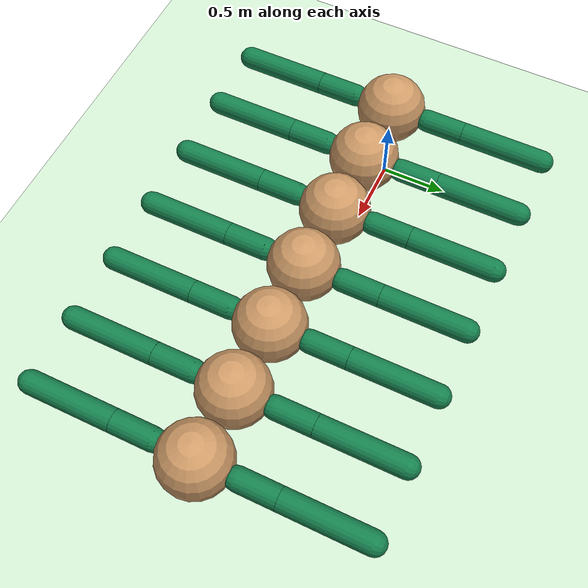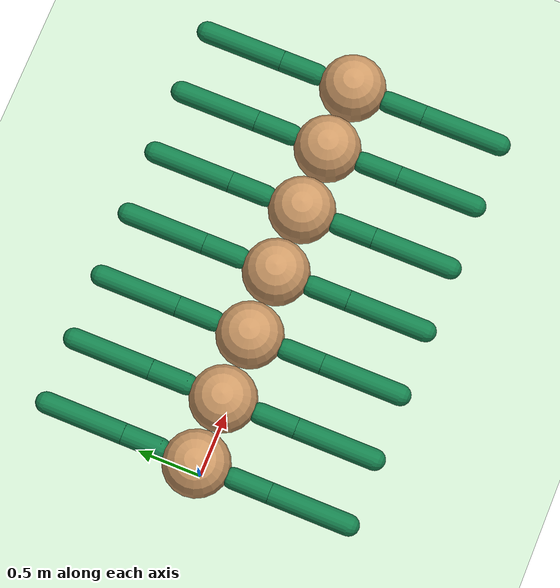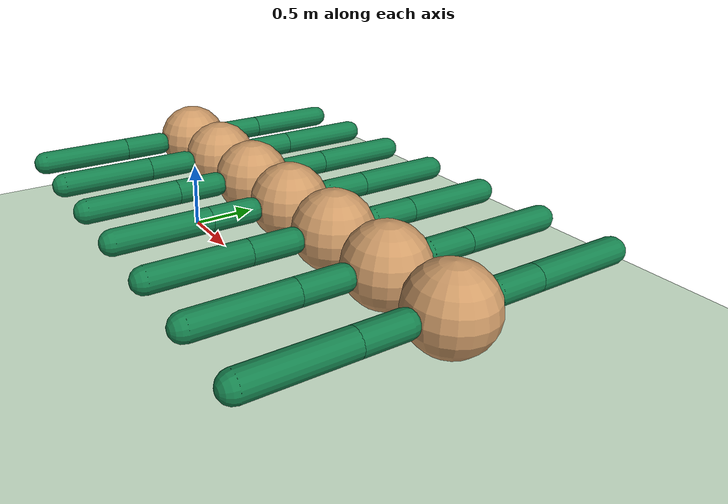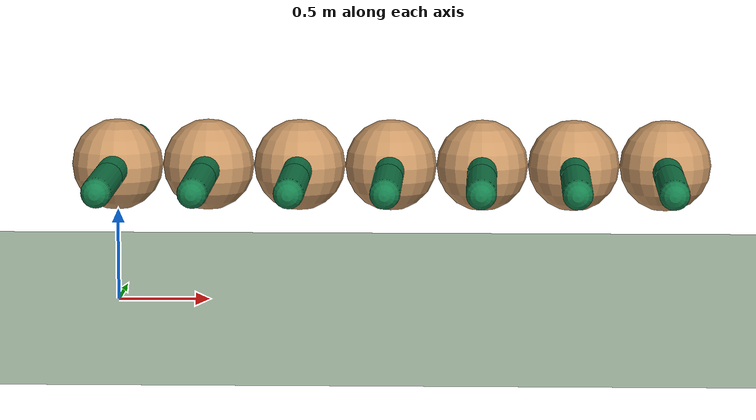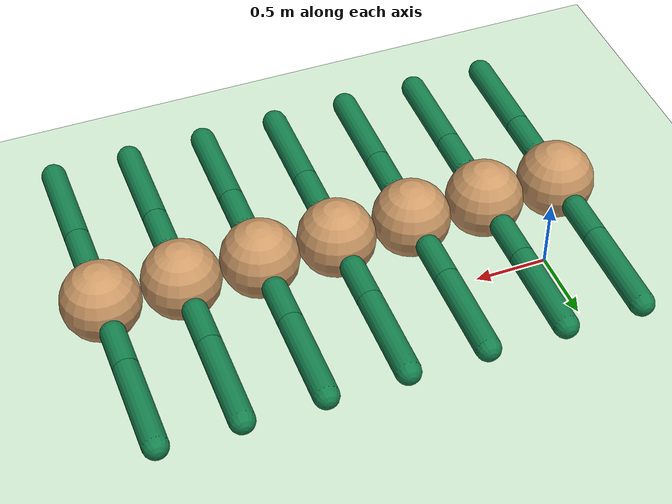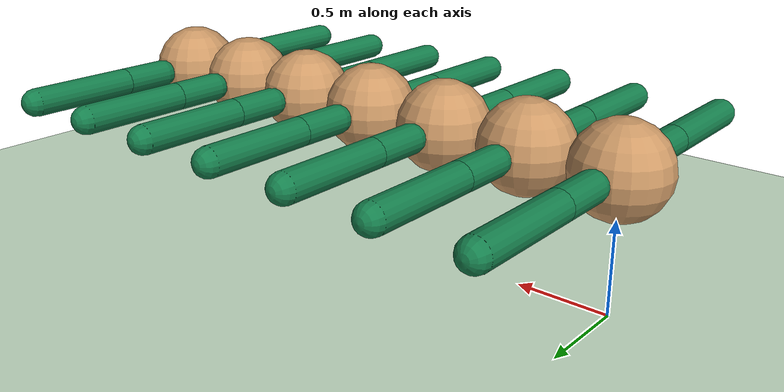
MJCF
<mujoco model="centipede">
    <compiler angle="degree" coordinate="local" inertiafromgeom="true"/>

    <option integrator="RK4" timestep="0.01"/>

    <default>
        <joint armature="1" damping="1" limited="true"/>
        <geom conaffinity="0" condim="3" density="25.0" friction="1.5 0.1 0.1" margin="0.01" rgba="0.8 0.6 0.4 1"/>
    </default>

    <asset>
        <texture builtin="gradient" height="100" rgb1="1 1 1" rgb2="0 0 0" type="skybox" width="100"/>
        <texture builtin="flat" height="1278" mark="cross" markrgb="1 1 1" name="texgeom" random="0.01"
                 rgb1="0.8 0.6 0.4" rgb2="0.8 0.6 0.4" type="cube" width="127"/>
        <texture builtin="checker" height="100" name="texplane" rgb1="0 0 0" rgb2="0.8 0.8 0.8" type="2d" width="100"/>
        <material name="MatPlane" reflectance="0.5" shininess="1" specular="1" texrepeat="60 60" texture="texplane"/>
        <material name="geom" texture="texgeom" texuniform="true"/>
    </asset>

    <worldbody>
        <light cutoff="100" diffuse="1 1 1" dir="-0 0 -1.3" directional="true" exponent="1" pos="0 0 1.3"
               specular=".1 .1 .1"/>
        <geom conaffinity="1" condim="3" material="MatPlane" name="floor" pos="0 0 0" rgba="0.8 0.9 0.8 1"
              size="40 40 40" type="plane"/>
        <body name="torso_0" pos="0 0 0.75">
            <geom name="torsoGeom_0" pos="0 0 0" size="0.25" type="sphere" density="100"/>
            <joint armature="0" damping="0" limited="false" margin="0.01" name="root" pos="0 0 0" type="free"/>

            <body name="legbody_0" pos="0.0 -0.28 0">
                <joint axis="0 0 1" name="lefthip_0" pos="0.0 0.0 0.0" range="-40 40" type="hinge"/>
                <geom fromto="0.0 0.0 0.0 0.0 -0.28 0.0" name="legGeom_0" size="0.08" type="capsule"
                      rgba=".08 .5 .3 1"/>
                <body pos="0 -0.28 0" name="frontFoot_0">
                    <joint axis="1 0 0" name="ankle_0" pos="0.0 0.0 0.0" range="30 100" type="hinge"/>
                    <geom fromto="0.0 0.0 0.0 0 -0.6 0.0" name="ankleGeom_0" size="0.08" type="capsule"
                          rgba=".08 .5 .3 1"/>
                </body>
            </body>

            <body name="legbody_1" pos="0.0 0.28 0">
                <joint axis="0 0 1" name="righthip_1" pos="0.0 0.0 0.0" range="-40 40" type="hinge"/>
                <geom fromto="0.0 0.0 0.0 0.0 0.28 0.0" name="legGeom_1" size="0.08" type="capsule" rgba=".08 .5 .3 1"/>
                <body pos="0 0.28 0" name="frontFoot_1">
                    <joint axis="-1 0 0" name="ankle_1" pos="0.0 0.0 0.0" range="30 100" type="hinge"/>
                    <geom fromto="0.0 0.0 0.0 0 0.6 0.0" name="ankleGeom_1" size="0.08" type="capsule"
                          rgba=".08 .5 .3 1"/>
                </body>
            </body>

            <body name="torso_1" pos="0.50 0 0">
                <geom name="torsoGeom_1" pos="0 0 0" size="0.25" type="sphere" density="100"/>
                <joint axis="0 0 1" name="body_1" pos="-0.25 0.0 0.0" range="-20 20" type="hinge"/>
                <joint axis="0 1 0" name="bodyupdown_1" pos="-0.25 0.0 0.0" range="-10 30" type="hinge"/>

                <body name="legbody_2" pos="0.0 -0.28 0">
                    <joint axis="0 0 1" name="lefthip_2" pos="0.0 0.0 0.0" range="-40 40" type="hinge"/>
                    <geom fromto="0.0 0.0 0.0 0.0 -0.28 0.0" name="legGeom_2" size="0.08" type="capsule"
                          rgba=".08 .5 .3 1"/>
                    <body pos="0 -0.28 0" name="frontFoot_2">
                        <joint axis="1 0 0" name="ankle_2" pos="0.0 0.0 0.0" range="30 100" type="hinge"/>
                        <geom fromto="0.0 0.0 0.0 0 -0.6 0.0" name="ankleGeom_2" size="0.08" type="capsule"
                              rgba=".08 .5 .3 1"/>
                    </body>
                </body>

                <body name="legbody_3" pos="0.0 0.28 0">
                    <joint axis="0 0 1" name="righthip_3" pos="0.0 0.0 0.0" range="-40 40" type="hinge"/>
                    <geom fromto="0.0 0.0 0.0 0.0 0.28 0.0" name="legGeom_3" size="0.08" type="capsule"
                          rgba=".08 .5 .3 1"/>
                    <body pos="0 0.28 0" name="frontFoot_3">
                        <joint axis="-1 0 0" name="ankle_3" pos="0.0 0.0 0.0" range="30 100" type="hinge"/>
                        <geom fromto="0.0 0.0 0.0 0 0.6 0.0" name="ankleGeom_3" size="0.08" type="capsule"
                              rgba=".08 .5 .3 1"/>
                    </body>
                </body>

                <body name="torso_2" pos="0.50 0 0">
                    <geom name="torsoGeom_2" pos="0 0 0" size="0.25" type="sphere" density="100"/>
                    <joint axis="0 0 1" name="body_2" pos="-0.25 0.0 0.0" range="-20 20" type="hinge"/>
                    <joint axis="0 1 0" name="bodyupdown_2" pos="-0.25 0.0 0.0" range="-10 30" type="hinge"/>

                    <body name="legbody_4" pos="0.0 -0.28 0">
                        <joint axis="0 0 1" name="lefthip_4" pos="0.0 0.0 0.0" range="-40 40" type="hinge"/>
                        <geom fromto="0.0 0.0 0.0 0.0 -0.28 0.0" name="legGeom_4" size="0.08" type="capsule"
                              rgba=".08 .5 .3 1"/>
                        <body pos="0 -0.28 0" name="frontFoot_4">
                            <joint axis="1 0 0" name="ankle_4" pos="0.0 0.0 0.0" range="30 100" type="hinge"/>
                            <geom fromto="0.0 0.0 0.0 0 -0.6 0.0" name="ankleGeom_4" size="0.08" type="capsule"
                                  rgba=".08 .5 .3 1"/>
                        </body>
                    </body>

                    <body name="legbody_5" pos="0.0 0.28 0">
                        <joint axis="0 0 1" name="righthip_5" pos="0.0 0.0 0.0" range="-40 40" type="hinge"/>
                        <geom fromto="0.0 0.0 0.0 0.0 0.28 0.0" name="legGeom_5" size="0.08" type="capsule"
                              rgba=".08 .5 .3 1"/>
                        <body pos="0 0.28 0" name="frontFoot_5">
                            <joint axis="-1 0 0" name="ankle_5" pos="0.0 0.0 0.0" range="30 100" type="hinge"/>
                            <geom fromto="0.0 0.0 0.0 0 0.6 0.0" name="ankleGeom_5" size="0.08" type="capsule"
                                  rgba=".08 .5 .3 1"/>
                        </body>
                    </body>

                    <body name="torso_3" pos="0.50 0 0">
                        <geom name="torsoGeom_3" pos="0 0 0" size="0.25" type="sphere" density="100"/>
                        <joint axis="0 0 1" name="body_3" pos="-0.25 0.0 0.0" range="-20 20" type="hinge"/>
                        <joint axis="0 1 0" name="bodyupdown_3" pos="-0.25 0.0 0.0" range="-10 30" type="hinge"/>

                        <body name="legbody_6" pos="0.0 -0.28 0">
                            <joint axis="0 0 1" name="lefthip_6" pos="0.0 0.0 0.0" range="-40 40" type="hinge"/>
                            <geom fromto="0.0 0.0 0.0 0.0 -0.28 0.0" name="legGeom_6" size="0.08" type="capsule"
                                  rgba=".08 .5 .3 1"/>
                            <body pos="0 -0.28 0" name="frontFoot_6">
                                <joint axis="1 0 0" name="ankle_6" pos="0.0 0.0 0.0" range="30 100" type="hinge"/>
                                <geom fromto="0.0 0.0 0.0 0 -0.6 0.0" name="ankleGeom_6" size="0.08" type="capsule"
                                      rgba=".08 .5 .3 1"/>
                            </body>
                        </body>

                        <body name="legbody_7" pos="0.0 0.28 0">
                            <joint axis="0 0 1" name="righthip_7" pos="0.0 0.0 0.0" range="-40 40" type="hinge"/>
                            <geom fromto="0.0 0.0 0.0 0.0 0.28 0.0" name="legGeom_7" size="0.08" type="capsule"
                                  rgba=".08 .5 .3 1"/>
                            <body pos="0 0.28 0" name="frontFoot_7">
                                <joint axis="-1 0 0" name="ankle_7" pos="0.0 0.0 0.0" range="30 100" type="hinge"/>
                                <geom fromto="0.0 0.0 0.0 0 0.6 0.0" name="ankleGeom_7" size="0.08" type="capsule"
                                      rgba=".08 .5 .3 1"/>
                            </body>
                        </body>

                        <body name="torso_4" pos="0.50 0 0">
                            <geom name="torsoGeom_4" pos="0 0 0" size="0.25" type="sphere" density="100"/>
                            <joint axis="0 0 1" name="body_4" pos="-0.25 0.0 0.0" range="-20 20" type="hinge"/>
                            <joint axis="0 1 0" name="bodyupdown_4" pos="-0.25 0.0 0.0" range="-10 30" type="hinge"/>

                            <body name="legbody_8" pos="0.0 -0.28 0">
                                <joint axis="0 0 1" name="lefthip_8" pos="0.0 0.0 0.0" range="-40 40" type="hinge"/>
                                <geom fromto="0.0 0.0 0.0 0.0 -0.28 0.0" name="legGeom_8" size="0.08" type="capsule"
                                      rgba=".08 .5 .3 1"/>
                                <body pos="0 -0.28 0" name="frontFoot_8">
                                    <joint axis="1 0 0" name="ankle_8" pos="0.0 0.0 0.0" range="30 100" type="hinge"/>
                                    <geom fromto="0.0 0.0 0.0 0 -0.6 0.0" name="ankleGeom_8" size="0.08" type="capsule"
                                          rgba=".08 .5 .3 1"/>
                                </body>
                            </body>

                            <body name="legbody_9" pos="0.0 0.28 0">
                                <joint axis="0 0 1" name="righthip_9" pos="0.0 0.0 0.0" range="-40 40" type="hinge"/>
                                <geom fromto="0.0 0.0 0.0 0.0 0.28 0.0" name="legGeom_9" size="0.08" type="capsule"
                                      rgba=".08 .5 .3 1"/>
                                <body pos="0 0.28 0" name="frontFoot_9">
                                    <joint axis="-1 0 0" name="ankle_9" pos="0.0 0.0 0.0" range="30 100" type="hinge"/>
                                    <geom fromto="0.0 0.0 0.0 0 0.6 0.0" name="ankleGeom_9" size="0.08" type="capsule"
                                          rgba=".08 .5 .3 1"/>
                                </body>
                            </body>

                            <body name="torso_5" pos="0.50 0 0">
                                <geom name="torsoGeom_5" pos="0 0 0" size="0.25" type="sphere" density="100"/>
                                <joint axis="0 0 1" name="body_5" pos="-0.25 0.0 0.0" range="-20 20" type="hinge"/>
                                <joint axis="0 1 0" name="bodyupdown_5" pos="-0.25 0.0 0.0" range="-10 30"
                                       type="hinge"/>

                                <body name="legbody_10" pos="0.0 -0.28 0">
                                    <joint axis="0 0 1" name="lefthip_10" pos="0.0 0.0 0.0" range="-40 40"
                                           type="hinge"/>
                                    <geom fromto="0.0 0.0 0.0 0.0 -0.28 0.0" name="legGeom_10" size="0.08"
                                          type="capsule" rgba=".08 .5 .3 1"/>
                                    <body pos="0 -0.28 0" name="frontFoot_10">
                                        <joint axis="1 0 0" name="ankle_10" pos="0.0 0.0 0.0" range="30 100"
                                               type="hinge"/>
                                        <geom fromto="0.0 0.0 0.0 0 -0.6 0.0" name="ankleGeom_10" size="0.08"
                                              type="capsule" rgba=".08 .5 .3 1"/>
                                    </body>
                                </body>

                                <body name="legbody_11" pos="0.0 0.28 0">
                                    <joint axis="0 0 1" name="righthip_11" pos="0.0 0.0 0.0" range="-40 40"
                                           type="hinge"/>
                                    <geom fromto="0.0 0.0 0.0 0.0 0.28 0.0" name="legGeom_11" size="0.08" type="capsule"
                                          rgba=".08 .5 .3 1"/>
                                    <body pos="0 0.28 0" name="frontFoot_11">
                                        <joint axis="-1 0 0" name="ankle_11" pos="0.0 0.0 0.0" range="30 100"
                                               type="hinge"/>
                                        <geom fromto="0.0 0.0 0.0 0 0.6 0.0" name="ankleGeom_11" size="0.08"
                                              type="capsule" rgba=".08 .5 .3 1"/>
                                    </body>
                                </body>

                                <body name="torso_6" pos="0.50 0 0">
                                    <geom name="torsoGeom_6" pos="0 0 0" size="0.25" type="sphere" density="100"/>
                                    <joint axis="0 0 1" name="body_6" pos="-0.25 0.0 0.0" range="-20 20" type="hinge"/>
                                    <joint axis="0 1 0" name="bodyupdown_6" pos="-0.25 0.0 0.0" range="-10 30"
                                           type="hinge"/>

                                    <body name="legbody_12" pos="0.0 -0.28 0">
                                        <joint axis="0 0 1" name="lefthip_12" pos="0.0 0.0 0.0" range="-40 40"
                                               type="hinge"/>
                                        <geom fromto="0.0 0.0 0.0 0.0 -0.28 0.0" name="legGeom_12" size="0.08"
                                              type="capsule" rgba=".08 .5 .3 1"/>
                                        <body pos="0 -0.28 0" name="frontFoot_12">
                                            <joint axis="1 0 0" name="ankle_12" pos="0.0 0.0 0.0" range="30 100"
                                                   type="hinge"/>
                                            <geom fromto="0.0 0.0 0.0 0 -0.6 0.0" name="ankleGeom_12" size="0.08"
                                                  type="capsule" rgba=".08 .5 .3 1"/>
                                        </body>
                                    </body>

                                    <body name="legbody_13" pos="0.0 0.28 0">
                                        <joint axis="0 0 1" name="righthip_13" pos="0.0 0.0 0.0" range="-40 40"
                                               type="hinge"/>
                                        <geom fromto="0.0 0.0 0.0 0.0 0.28 0.0" name="legGeom_13" size="0.08"
                                              type="capsule" rgba=".08 .5 .3 1"/>
                                        <body pos="0 0.28 0" name="frontFoot_13">
                                            <joint axis="-1 0 0" name="ankle_13" pos="0.0 0.0 0.0" range="30 100"
                                                   type="hinge"/>
                                            <geom fromto="0.0 0.0 0.0 0 0.6 0.0" name="ankleGeom_13" size="0.08"
                                                  type="capsule" rgba=".08 .5 .3 1"/>
                                        </body>
                                    </body>

                                </body>
                            </body>
                        </body>
                    </body>
                </body>
            </body>

        </body>
    </worldbody>
    <actuator>
        <motor ctrllimited="true" ctrlrange="-1.0 1.0" joint="lefthip_0" gear="150"/>
        <motor ctrllimited="true" ctrlrange="-1.0 1.0" joint="ankle_0" gear="150"/>
        <motor ctrllimited="true" ctrlrange="-1.0 1.0" joint="righthip_1" gear="150"/>
        <motor ctrllimited="true" ctrlrange="-1.0 1.0" joint="ankle_1" gear="150"/>
        <motor ctrllimited="true" ctrlrange="-1.0 1.0" joint="lefthip_2" gear="150"/>
        <motor ctrllimited="true" ctrlrange="-1.0 1.0" joint="ankle_2" gear="150"/>
        <motor ctrllimited="true" ctrlrange="-1.0 1.0" joint="righthip_3" gear="150"/>
        <motor ctrllimited="true" ctrlrange="-1.0 1.0" joint="ankle_3" gear="150"/>
        <motor ctrllimited="true" ctrlrange="-1.0 1.0" joint="body_1" gear="100"/>
        <motor ctrllimited="true" ctrlrange="-1.0 1.0" joint="bodyupdown_1" gear="100"/>
        <motor ctrllimited="true" ctrlrange="-1.0 1.0" joint="lefthip_4" gear="150"/>
        <motor ctrllimited="true" ctrlrange="-1.0 1.0" joint="ankle_4" gear="150"/>
        <motor ctrllimited="true" ctrlrange="-1.0 1.0" joint="righthip_5" gear="150"/>
        <motor ctrllimited="true" ctrlrange="-1.0 1.0" joint="ankle_5" gear="150"/>
        <motor ctrllimited="true" ctrlrange="-1.0 1.0" joint="body_2" gear="100"/>
        <motor ctrllimited="true" ctrlrange="-1.0 1.0" joint="bodyupdown_2" gear="100"/>
        <motor ctrllimited="true" ctrlrange="-1.0 1.0" joint="lefthip_6" gear="150"/>
        <motor ctrllimited="true" ctrlrange="-1.0 1.0" joint="ankle_6" gear="150"/>
        <motor ctrllimited="true" ctrlrange="-1.0 1.0" joint="righthip_7" gear="150"/>
        <motor ctrllimited="true" ctrlrange="-1.0 1.0" joint="ankle_7" gear="150"/>
        <motor ctrllimited="true" ctrlrange="-1.0 1.0" joint="body_3" gear="100"/>
        <motor ctrllimited="true" ctrlrange="-1.0 1.0" joint="bodyupdown_3" gear="100"/>
        <motor ctrllimited="true" ctrlrange="-1.0 1.0" joint="lefthip_8" gear="150"/>
        <motor ctrllimited="true" ctrlrange="-1.0 1.0" joint="ankle_8" gear="150"/>
        <motor ctrllimited="true" ctrlrange="-1.0 1.0" joint="righthip_9" gear="150"/>
        <motor ctrllimited="true" ctrlrange="-1.0 1.0" joint="ankle_9" gear="150"/>
        <motor ctrllimited="true" ctrlrange="-1.0 1.0" joint="body_4" gear="100"/>
        <motor ctrllimited="true" ctrlrange="-1.0 1.0" joint="bodyupdown_4" gear="100"/>
        <motor ctrllimited="true" ctrlrange="-1.0 1.0" joint="lefthip_10" gear="150"/>
        <motor ctrllimited="true" ctrlrange="-1.0 1.0" joint="ankle_10" gear="150"/>
        <motor ctrllimited="true" ctrlrange="-1.0 1.0" joint="righthip_11" gear="150"/>
        <motor ctrllimited="true" ctrlrange="-1.0 1.0" joint="ankle_11" gear="150"/>
        <motor ctrllimited="true" ctrlrange="-1.0 1.0" joint="body_5" gear="100"/>
        <motor ctrllimited="true" ctrlrange="-1.0 1.0" joint="bodyupdown_5" gear="100"/>
        <motor ctrllimited="true" ctrlrange="-1.0 1.0" joint="lefthip_12" gear="150"/>
        <motor ctrllimited="true" ctrlrange="-1.0 1.0" joint="ankle_12" gear="150"/>
        <motor ctrllimited="true" ctrlrange="-1.0 1.0" joint="righthip_13" gear="150"/>
        <motor ctrllimited="true" ctrlrange="-1.0 1.0" joint="ankle_13" gear="150"/>
        <motor ctrllimited="true" ctrlrange="-1.0 1.0" joint="body_6" gear="100"/>
        <motor ctrllimited="true" ctrlrange="-1.0 1.0" joint="bodyupdown_6" gear="100"/>
    </actuator>
    <custom>
        <numeric
                data="0.0 0.0 0.55 1.0 0.0 0.0 0.0 0.0 -1.0 0.0 1.0 0.0 -1.0 0.0 1.0 0.0 -1.0 0.0 1.0 0.0 -1.0 0.0 1.0 0.0 -1.0 0.0 1.0 0.0 -1.0 0.0 1.0 0.0 -1.0 0.0 1.0"
                name="init_qpos"/>
    </custom>

</mujoco>
